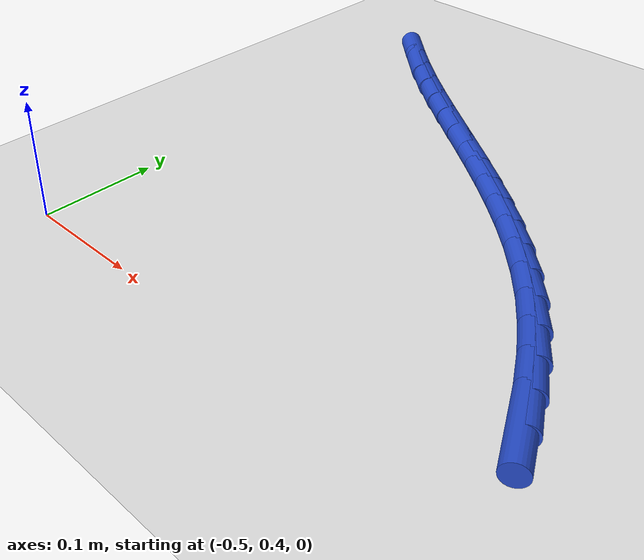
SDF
<sdf version="1.6">
 <world name="default">
  <model name="ground_plane">
   <static>1</static>
   <link name="link">
    <collision name="collision">
     <geometry><plane><normal>0 0 1</normal><size>100 100</size></plane></geometry>
     <surface><friction><ode><mu>100</mu><mu2>50</mu2></ode></friction></surface>
    </collision>
    <visual name="visual">
     <cast_shadows>0</cast_shadows>
     <geometry><plane><normal>0 0 1</normal><size>100 100</size></plane></geometry>
     <material>
      <script><uri>file://media/materials/scripts/gazebo.material</uri><name>Gazebo/WhiteGlow</name></script>
     </material>
    </visual>
   </link>
  </model>
  <model name="line">
   <link name="link_16">
    <pose>-0.10379154230126109 0.46958507412128947 0.01 0 1.57 -1.1064630506506774</pose>
    <collision name="collision">
     <geometry><cylinder><radius>0.01</radius><length>0.08</length></cylinder></geometry>
    </collision>
    <visual name="visual">
     <material>
      <script><name>Gazebo/Blue</name><uri>file://media/materials/scripts/gazebo.material</uri></script>
     </material>
     <geometry><cylinder><radius>0.01</radius><length>0.08</length></cylinder></geometry>
    </visual>
   </link>
   <link name="link_17">
    <pose>-0.1172039631973032 0.4963639965953026 0.01 0 1.57 -1.0539219121544394</pose>
    <collision name="collision">
     <geometry><cylinder><radius>0.01</radius><length>0.08</length></cylinder></geometry>
    </collision>
    <visual name="visual">
     <material>
      <script><name>Gazebo/Blue</name><uri>file://media/materials/scripts/gazebo.material</uri></script>
     </material>
     <geometry><cylinder><radius>0.01</radius><length>0.08</length></cylinder></geometry>
    </visual>
   </link>
   <link name="link_18">
    <pose>-0.13188970498852398 0.5222001173923687 0.01 0 1.57 -0.9953167761884901</pose>
    <collision name="collision">
     <geometry><cylinder><radius>0.01</radius><length>0.08</length></cylinder></geometry>
    </collision>
    <visual name="visual">
     <material>
      <script><name>Gazebo/Blue</name><uri>file://media/materials/scripts/gazebo.material</uri></script>
     </material>
     <geometry><cylinder><radius>0.01</radius><length>0.08</length></cylinder></geometry>
    </visual>
   </link>
   <link name="link_19">
    <pose>-0.14795206573301184 0.5469599461026533 0.01 0 1.57 -0.930571358202595</pose>
    <collision name="collision">
     <geometry><cylinder><radius>0.01</radius><length>0.08</length></cylinder></geometry>
    </collision>
    <visual name="visual">
     <material>
      <script><name>Gazebo/Blue</name><uri>file://media/materials/scripts/gazebo.material</uri></script>
     </material>
     <geometry><cylinder><radius>0.01</radius><length>0.08</length></cylinder></geometry>
    </visual>
   </link>
   <link name="link_20">
    <pose>-0.16549434348885528 0.5705099923163224 0.01 0 1.57 -0.862195437643134</pose>
    <collision name="collision">
     <geometry><cylinder><radius>0.01</radius><length>0.08</length></cylinder></geometry>
    </collision>
    <visual name="visual">
     <material>
      <script><name>Gazebo/Blue</name><uri>file://media/materials/scripts/gazebo.material</uri></script>
     </material>
     <geometry><cylinder><radius>0.01</radius><length>0.08</length></cylinder></geometry>
    </visual>
   </link>
   <link name="link_21">
    <pose>-0.18457103720722193 0.5927672783265211 0.01 0 1.57 -0.8004172234152995</pose>
    <collision name="collision">
     <geometry><cylinder><radius>0.01</radius><length>0.08</length></cylinder></geometry>
    </collision>
    <visual name="visual">
     <material>
      <script><name>Gazebo/Blue</name><uri>file://media/materials/scripts/gazebo.material</uri></script>
     </material>
     <geometry><cylinder><radius>0.01</radius><length>0.08</length></cylinder></geometry>
    </visual>
   </link>
   <link name="link_22">
    <pose>-0.2050360613865466 0.6138564544655629 0.01 0 1.57 -0.7481338867954107</pose>
    <collision name="collision">
     <geometry><cylinder><radius>0.01</radius><length>0.08</length></cylinder></geometry>
    </collision>
    <visual name="visual">
     <material>
      <script><name>Gazebo/Blue</name><uri>file://media/materials/scripts/gazebo.material</uri></script>
     </material>
     <geometry><cylinder><radius>0.01</radius><length>0.08</length></cylinder></geometry>
    </visual>
   </link>
   <link name="link_23">
    <pose>-0.22669180043178594 0.6339555106547541 0.01 0 1.57 -0.7054011129285769</pose>
    <collision name="collision">
     <geometry><cylinder><radius>0.01</radius><length>0.08</length></cylinder></geometry>
    </collision>
    <visual name="visual">
     <material>
      <script><name>Gazebo/Blue</name><uri>file://media/materials/scripts/gazebo.material</uri></script>
     </material>
     <geometry><cylinder><radius>0.01</radius><length>0.08</length></cylinder></geometry>
    </visual>
   </link>
   <link name="link_24">
    <pose>-0.2493406387104028 0.6532424368542108 0.01 0 1.57 -0.6720648849168961</pose>
    <collision name="collision">
     <geometry><cylinder><radius>0.01</radius><length>0.08</length></cylinder></geometry>
    </collision>
    <visual name="visual">
     <material>
      <script><name>Gazebo/Blue</name><uri>file://media/materials/scripts/gazebo.material</uri></script>
     </material>
     <geometry><cylinder><radius>0.01</radius><length>0.08</length></cylinder></geometry>
    </visual>
   </link>
   <link name="link_25">
    <pose>-0.27278496058985996 0.6718952230240497 0.01 0 1.57 -0.6478787717977582</pose>
    <collision name="collision">
     <geometry><cylinder><radius>0.01</radius><length>0.08</length></cylinder></geometry>
    </collision>
    <visual name="visual">
     <material>
      <script><name>Gazebo/Blue</name><uri>file://media/materials/scripts/gazebo.material</uri></script>
     </material>
     <geometry><cylinder><radius>0.01</radius><length>0.08</length></cylinder></geometry>
    </visual>
   </link>
   <link name="link_26">
    <pose>-0.2968271504376203 0.6900918591243873 0.01 0 1.57 -0.6325896762150611</pose>
    <collision name="collision">
     <geometry><cylinder><radius>0.01</radius><length>0.08</length></cylinder></geometry>
    </collision>
    <visual name="visual">
     <material>
      <script><name>Gazebo/Blue</name><uri>file://media/materials/scripts/gazebo.material</uri></script>
     </material>
     <geometry><cylinder><radius>0.01</radius><length>0.08</length></cylinder></geometry>
    </visual>
   </link>
   <link name="link_27">
    <pose>-0.3212695926211466 0.7080103351153396 0.01 0 1.57 -0.6259937109540094</pose>
    <collision name="collision">
     <geometry><cylinder><radius>0.01</radius><length>0.08</length></cylinder></geometry>
    </collision>
    <visual name="visual">
     <material>
      <script><name>Gazebo/Blue</name><uri>file://media/materials/scripts/gazebo.material</uri></script>
     </material>
     <geometry><cylinder><radius>0.01</radius><length>0.08</length></cylinder></geometry>
    </visual>
   </link>
   <link name="link_28">
    <pose>-0.34591467150790184 0.7258286409570236 0.01 0 1.57 -0.6279674166619715</pose>
    <collision name="collision">
     <geometry><cylinder><radius>0.01</radius><length>0.08</length></cylinder></geometry>
    </collision>
    <visual name="visual">
     <material>
      <script><name>Gazebo/Blue</name><uri>file://media/materials/scripts/gazebo.material</uri></script>
     </material>
     <geometry><cylinder><radius>0.01</radius><length>0.08</length></cylinder></geometry>
    </visual>
   </link>
   <link name="link_29">
    <pose>-0.37056477146534866 0.7437247666095553 0.01 0 1.57 -0.6384791834148354</pose>
    <collision name="collision">
     <geometry><cylinder><radius>0.01</radius><length>0.08</length></cylinder></geometry>
    </collision>
    <visual name="visual">
     <material>
      <script><name>Gazebo/Blue</name><uri>file://media/materials/scripts/gazebo.material</uri></script>
     </material>
     <geometry><cylinder><radius>0.01</radius><length>0.08</length></cylinder></geometry>
    </visual>
   </link>
   <link name="link_30">
    <pose>-0.39502227686095015 0.7618767020330515 0.01 0 1.57 -0.6575836212396218</pose>
    <collision name="collision">
     <geometry><cylinder><radius>0.01</radius><length>0.08</length></cylinder></geometry>
    </collision>
    <visual name="visual">
     <material>
      <script><name>Gazebo/Blue</name><uri>file://media/materials/scripts/gazebo.material</uri></script>
     </material>
     <geometry><cylinder><radius>0.01</radius><length>0.08</length></cylinder></geometry>
    </visual>
   </link>
   <link name="link_31">
    <pose>-0.419089572062169 0.7804624371876285 0.01 0 1.57 -0.6853990377906917</pose>
    <collision name="collision">
     <geometry><cylinder><radius>0.01</radius><length>0.08</length></cylinder></geometry>
    </collision>
    <visual name="visual">
     <material>
      <script><name>Gazebo/Blue</name><uri>file://media/materials/scripts/gazebo.material</uri></script>
     </material>
     <geometry><cylinder><radius>0.01</radius><length>0.08</length></cylinder></geometry>
    </visual>
   </link>
   <link name="link_32">
    <pose>-0.442569041436468 0.7996599620334026 0.01 0 1.57 -0.7189199640044169</pose>
    <collision name="collision">
     <geometry><cylinder><radius>0.01</radius><length>0.08</length></cylinder></geometry>
    </collision>
    <visual name="visual">
     <material>
      <script><name>Gazebo/Blue</name><uri>file://media/materials/scripts/gazebo.material</uri></script>
     </material>
     <geometry><cylinder><radius>0.01</radius><length>0.08</length></cylinder></geometry>
    </visual>
   </link>
   <link name="link_33">
    <pose>-0.4653297631536652 0.8195792092101718 0.01 0 1.57 -0.745458313184018</pose>
    <collision name="collision">
     <geometry><cylinder><radius>0.01</radius><length>0.08</length></cylinder></geometry>
    </collision>
    <visual name="visual">
     <material>
      <script><name>Gazebo/Blue</name><uri>file://media/materials/scripts/gazebo.material</uri></script>
     </material>
     <geometry><cylinder><radius>0.01</radius><length>0.08</length></cylinder></geometry>
    </visual>
   </link>
  </model>
 </world>
</sdf>
